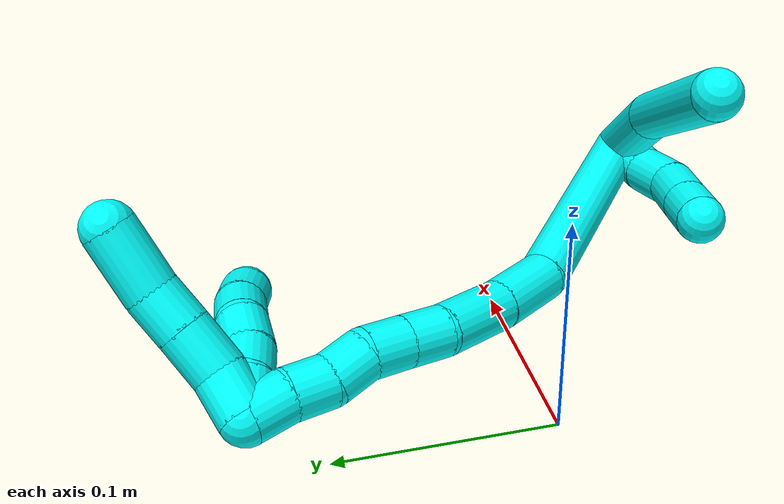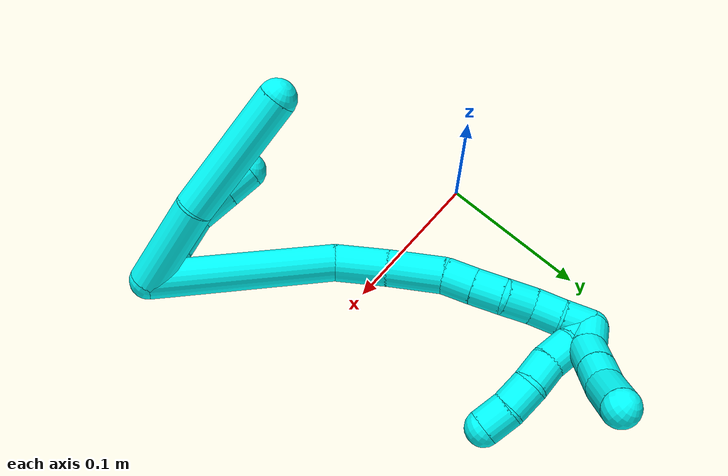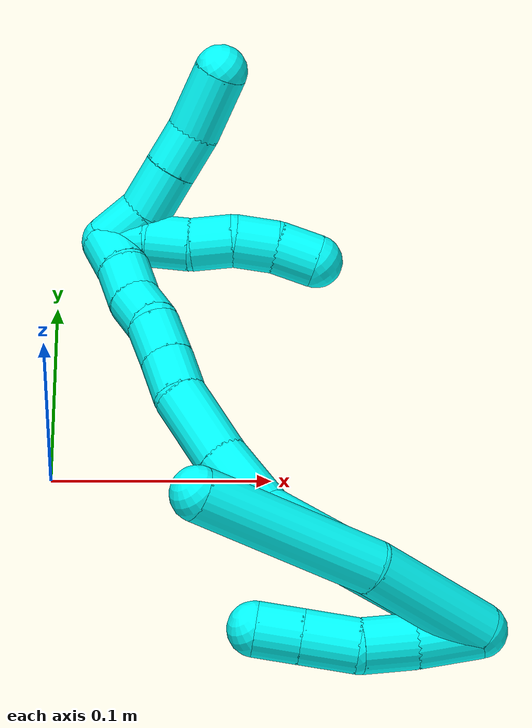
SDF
<sdf version="1.7">
 <world name="default">
  <model name="3">
   <static>0</static>
   <link name="3">
    <collision name="collision-cylinder-e_1_2_8">
     <pose>0.008857 0.00161 -0.030039 -3.08805 0.286328 -2.77422</pose>
     <geometry><cylinder><radius>0.0125</radius><length>0.062717</length></cylinder></geometry>
     <surface>
      <friction><ode><mu>1.16</mu><mu2>1.16</mu2><slip1>0</slip1><slip2>0</slip2></ode></friction>
      <contact><ode><kp>1e+06</kp><kd>1</kd><max_vel>0</max_vel><min_depth>0.001</min_depth></ode></contact>
     </surface>
    </collision>
    <visual name="visual-cylinder-e_1_2_8">
     <pose>0.008857 0.00161 -0.030039 -3.08805 0.286328 -2.77422</pose>
     <geometry><cylinder><radius>0.0125</radius><length>0.062717</length></cylinder></geometry>
     <material><ambient>0.003922 1 0.996078 1</ambient></material>
    </visual>
    <collision name="collision-cylinder-e_2_8_6">
     <pose>0.035625 0.010147 -0.099267 -2.96665 0.422915 -2.36593</pose>
     <geometry><cylinder><radius>0.0125</radius><length>0.087283</length></cylinder></geometry>
     <surface>
      <friction><ode><mu>1.16</mu><mu2>1.16</mu2><slip1>0</slip1><slip2>0</slip2></ode></friction>
      <contact><ode><kp>1e+06</kp><kd>1</kd><max_vel>0</max_vel><min_depth>0.001</min_depth></ode></contact>
     </surface>
    </collision>
    <visual name="visual-cylinder-e_2_8_6">
     <pose>0.035625 0.010147 -0.099267 -2.96665 0.422915 -2.36593</pose>
     <geometry><cylinder><radius>0.0125</radius><length>0.087283</length></cylinder></geometry>
     <material><ambient>0.003922 1 0.996078 1</ambient></material>
    </visual>
    <collision name="collision-cylinder-e_1_2_9">
     <pose>0.012149 0.00388 -0.00657 -2.60817 1.01001 -2.22355</pose>
     <geometry><cylinder><radius>0.0125</radius><length>0.028692</length></cylinder></geometry>
     <surface>
      <friction><ode><mu>1.16</mu><mu2>1.16</mu2><slip1>0</slip1><slip2>0</slip2></ode></friction>
      <contact><ode><kp>1e+06</kp><kd>1</kd><max_vel>0</max_vel><min_depth>0.001</min_depth></ode></contact>
     </surface>
    </collision>
    <visual name="visual-cylinder-e_1_2_9">
     <pose>0.012149 0.00388 -0.00657 -2.60817 1.01001 -2.22355</pose>
     <geometry><cylinder><radius>0.0125</radius><length>0.028692</length></cylinder></geometry>
     <material><ambient>0.003922 1 0.996078 1</ambient></material>
    </visual>
    <collision name="collision-cylinder-e_2_9_10">
     <pose>0.034136 0.009827 -0.020506 -2.86789 0.909889 -2.59275</pose>
     <geometry><cylinder><radius>0.0125</radius><length>0.024927</length></cylinder></geometry>
     <surface>
      <friction><ode><mu>1.16</mu><mu2>1.16</mu2><slip1>0</slip1><slip2>0</slip2></ode></friction>
      <contact><ode><kp>1e+06</kp><kd>1</kd><max_vel>0</max_vel><min_depth>0.001</min_depth></ode></contact>
     </surface>
    </collision>
    <visual name="visual-cylinder-e_2_9_10">
     <pose>0.034136 0.009827 -0.020506 -2.86789 0.909889 -2.59275</pose>
     <geometry><cylinder><radius>0.0125</radius><length>0.024927</length></cylinder></geometry>
     <material><ambient>0.003922 1 0.996078 1</ambient></material>
    </visual>
    <collision name="collision-cylinder-e_3_10_11">
     <pose>0.052026 0.017535 -0.036064 -2.53867 0.680489 -1.70017</pose>
     <geometry><cylinder><radius>0.0125</radius><length>0.025592</length></cylinder></geometry>
     <surface>
      <friction><ode><mu>1.16</mu><mu2>1.16</mu2><slip1>0</slip1><slip2>0</slip2></ode></friction>
      <contact><ode><kp>1e+06</kp><kd>1</kd><max_vel>0</max_vel><min_depth>0.001</min_depth></ode></contact>
     </surface>
    </collision>
    <visual name="visual-cylinder-e_3_10_11">
     <pose>0.052026 0.017535 -0.036064 -2.53867 0.680489 -1.70017</pose>
     <geometry><cylinder><radius>0.0125</radius><length>0.025592</length></cylinder></geometry>
     <material><ambient>0.003922 1 0.996078 1</ambient></material>
    </visual>
    <collision name="collision-cylinder-e_4_11_5">
     <pose>0.066622 0.02766 -0.050971 -2.55271 0.681038 -1.7258</pose>
     <geometry><cylinder><radius>0.0125</radius><length>0.020789</length></cylinder></geometry>
     <surface>
      <friction><ode><mu>1.16</mu><mu2>1.16</mu2><slip1>0</slip1><slip2>0</slip2></ode></friction>
      <contact><ode><kp>1e+06</kp><kd>1</kd><max_vel>0</max_vel><min_depth>0.001</min_depth></ode></contact>
     </surface>
    </collision>
    <visual name="visual-cylinder-e_4_11_5">
     <pose>0.066622 0.02766 -0.050971 -2.55271 0.681038 -1.7258</pose>
     <geometry><cylinder><radius>0.0125</radius><length>0.020789</length></cylinder></geometry>
     <material><ambient>0.003922 1 0.996078 1</ambient></material>
    </visual>
    <collision name="collision-cylinder-e_1_2_12">
     <pose>0.016936 0.053519 -0.02536 -2.0133 0.278532 -0.436026</pose>
     <geometry><cylinder><radius>0.0125</radius><length>0.123195</length></cylinder></geometry>
     <surface>
      <friction><ode><mu>1.16</mu><mu2>1.16</mu2><slip1>0</slip1><slip2>0</slip2></ode></friction>
      <contact><ode><kp>1e+06</kp><kd>1</kd><max_vel>0</max_vel><min_depth>0.001</min_depth></ode></contact>
     </surface>
    </collision>
    <visual name="visual-cylinder-e_1_2_12">
     <pose>0.016936 0.053519 -0.02536 -2.0133 0.278532 -0.436026</pose>
     <geometry><cylinder><radius>0.0125</radius><length>0.123195</length></cylinder></geometry>
     <material><ambient>0.003922 1 0.996078 1</ambient></material>
    </visual>
    <collision name="collision-cylinder-e_2_12_13">
     <pose>0.033085 0.12285 -0.059397 -2.07274 -0.04359 0.073625</pose>
     <geometry><cylinder><radius>0.0125</radius><length>0.036107</length></cylinder></geometry>
     <surface>
      <friction><ode><mu>1.16</mu><mu2>1.16</mu2><slip1>0</slip1><slip2>0</slip2></ode></friction>
      <contact><ode><kp>1e+06</kp><kd>1</kd><max_vel>0</max_vel><min_depth>0.001</min_depth></ode></contact>
     </surface>
    </collision>
    <visual name="visual-cylinder-e_2_12_13">
     <pose>0.033085 0.12285 -0.059397 -2.07274 -0.04359 0.073625</pose>
     <geometry><cylinder><radius>0.0125</radius><length>0.036107</length></cylinder></geometry>
     <material><ambient>0.003922 1 0.996078 1</ambient></material>
    </visual>
    <collision name="collision-cylinder-e_3_13_14">
     <pose>0.029683 0.154926 -0.078152 -2.1255 -0.135851 0.243156</pose>
     <geometry><cylinder><radius>0.0125</radius><length>0.038622</length></cylinder></geometry>
     <surface>
      <friction><ode><mu>1.16</mu><mu2>1.16</mu2><slip1>0</slip1><slip2>0</slip2></ode></friction>
      <contact><ode><kp>1e+06</kp><kd>1</kd><max_vel>0</max_vel><min_depth>0.001</min_depth></ode></contact>
     </surface>
    </collision>
    <visual name="visual-cylinder-e_3_13_14">
     <pose>0.029683 0.154926 -0.078152 -2.1255 -0.135851 0.243156</pose>
     <geometry><cylinder><radius>0.0125</radius><length>0.038622</length></cylinder></geometry>
     <material><ambient>0.003922 1 0.996078 1</ambient></material>
    </visual>
    <collision name="collision-cylinder-e_4_14_15">
     <pose>0.023648 0.180029 -0.092401 -2.01171 -0.336555 0.523727</pose>
     <geometry><cylinder><radius>0.0125</radius><length>0.020708</length></cylinder></geometry>
     <surface>
      <friction><ode><mu>1.16</mu><mu2>1.16</mu2><slip1>0</slip1><slip2>0</slip2></ode></friction>
      <contact><ode><kp>1e+06</kp><kd>1</kd><max_vel>0</max_vel><min_depth>0.001</min_depth></ode></contact>
     </surface>
    </collision>
    <visual name="visual-cylinder-e_4_14_15">
     <pose>0.023648 0.180029 -0.092401 -2.01171 -0.336555 0.523727</pose>
     <geometry><cylinder><radius>0.0125</radius><length>0.020708</length></cylinder></geometry>
     <material><ambient>0.003922 1 0.996078 1</ambient></material>
    </visual>
    <collision name="collision-cylinder-e_5_15_16">
     <pose>0.017026 0.197727 -0.100994 -2.03377 -0.312799 0.499269</pose>
     <geometry><cylinder><radius>0.0125</radius><length>0.020814</length></cylinder></geometry>
     <surface>
      <friction><ode><mu>1.16</mu><mu2>1.16</mu2><slip1>0</slip1><slip2>0</slip2></ode></friction>
      <contact><ode><kp>1e+06</kp><kd>1</kd><max_vel>0</max_vel><min_depth>0.001</min_depth></ode></contact>
     </surface>
    </collision>
    <visual name="visual-cylinder-e_5_15_16">
     <pose>0.017026 0.197727 -0.100994 -2.03377 -0.312799 0.499269</pose>
     <geometry><cylinder><radius>0.0125</radius><length>0.020814</length></cylinder></geometry>
     <material><ambient>0.003922 1 0.996078 1</ambient></material>
    </visual>
    <collision name="collision-cylinder-e_6_16_17">
     <pose>0.013139 0.216448 -0.107602 -1.78894 -0.067705 0.084339</pose>
     <geometry><cylinder><radius>0.0125</radius><length>0.020248</length></cylinder></geometry>
     <surface>
      <friction><ode><mu>1.16</mu><mu2>1.16</mu2><slip1>0</slip1><slip2>0</slip2></ode></friction>
      <contact><ode><kp>1e+06</kp><kd>1</kd><max_vel>0</max_vel><min_depth>0.001</min_depth></ode></contact>
     </surface>
    </collision>
    <visual name="visual-cylinder-e_6_16_17">
     <pose>0.013139 0.216448 -0.107602 -1.78894 -0.067705 0.084339</pose>
     <geometry><cylinder><radius>0.0125</radius><length>0.020248</length></cylinder></geometry>
     <material><ambient>0.003922 1 0.996078 1</ambient></material>
    </visual>
    <collision name="collision-cylinder-e_7_17_18">
     <pose>0.0093 0.235158 -0.113263 -1.94499 -0.320417 0.465532</pose>
     <geometry><cylinder><radius>0.0125</radius><length>0.020032</length></cylinder></geometry>
     <surface>
      <friction><ode><mu>1.16</mu><mu2>1.16</mu2><slip1>0</slip1><slip2>0</slip2></ode></friction>
      <contact><ode><kp>1e+06</kp><kd>1</kd><max_vel>0</max_vel><min_depth>0.001</min_depth></ode></contact>
     </surface>
    </collision>
    <visual name="visual-cylinder-e_7_17_18">
     <pose>0.0093 0.235158 -0.113263 -1.94499 -0.320417 0.465532</pose>
     <geometry><cylinder><radius>0.0125</radius><length>0.020032</length></cylinder></geometry>
     <material><ambient>0.003922 1 0.996078 1</ambient></material>
    </visual>
    <collision name="collision-cylinder-e_8_18_1">
     <pose>0.004321 0.25358 -0.119524 -1.85398 -0.180872 0.240501</pose>
     <geometry><cylinder><radius>0.0125</radius><length>0.020274</length></cylinder></geometry>
     <surface>
      <friction><ode><mu>1.16</mu><mu2>1.16</mu2><slip1>0</slip1><slip2>0</slip2></ode></friction>
      <contact><ode><kp>1e+06</kp><kd>1</kd><max_vel>0</max_vel><min_depth>0.001</min_depth></ode></contact>
     </surface>
    </collision>
    <visual name="visual-cylinder-e_8_18_1">
     <pose>0.004321 0.25358 -0.119524 -1.85398 -0.180872 0.240501</pose>
     <geometry><cylinder><radius>0.0125</radius><length>0.020274</length></cylinder></geometry>
     <material><ambient>0.003922 1 0.996078 1</ambient></material>
    </visual>
    <collision name="collision-cylinder-e_1_1_19">
     <pose>-0.004738 0.257346 -0.11858 0.999986 -0.808949 -0.459455</pose>
     <geometry><cylinder><radius>0.0125</radius><length>0.02</length></cylinder></geometry>
     <surface>
      <friction><ode><mu>1.16</mu><mu2>1.16</mu2><slip1>0</slip1><slip2>0</slip2></ode></friction>
      <contact><ode><kp>1e+06</kp><kd>1</kd><max_vel>0</max_vel><min_depth>0.001</min_depth></ode></contact>
     </surface>
    </collision>
    <visual name="visual-cylinder-e_1_1_19">
     <pose>-0.004738 0.257346 -0.11858 0.999986 -0.808949 -0.459455</pose>
     <geometry><cylinder><radius>0.0125</radius><length>0.02</length></cylinder></geometry>
     <material><ambient>0.003922 1 0.996078 1</ambient></material>
    </visual>
    <collision name="collision-cylinder-e_2_19_20">
     <pose>-0.018583 0.246249 -0.109528 0.782218 -0.722141 -0.308948</pose>
     <geometry><cylinder><radius>0.0125</radius><length>0.02</length></cylinder></geometry>
     <surface>
      <friction><ode><mu>1.16</mu><mu2>1.16</mu2><slip1>0</slip1><slip2>0</slip2></ode></friction>
      <contact><ode><kp>1e+06</kp><kd>1</kd><max_vel>0</max_vel><min_depth>0.001</min_depth></ode></contact>
     </surface>
    </collision>
    <visual name="visual-cylinder-e_2_19_20">
     <pose>-0.018583 0.246249 -0.109528 0.782218 -0.722141 -0.308948</pose>
     <geometry><cylinder><radius>0.0125</radius><length>0.02</length></cylinder></geometry>
     <material><ambient>0.003922 1 0.996078 1</ambient></material>
    </visual>
    <collision name="collision-cylinder-e_3_20_21">
     <pose>-0.033213 0.237038 -0.0997 0.716387 -0.930668 -0.371586</pose>
     <geometry><cylinder><radius>0.0125</radius><length>0.02</length></cylinder></geometry>
     <surface>
      <friction><ode><mu>1.16</mu><mu2>1.16</mu2><slip1>0</slip1><slip2>0</slip2></ode></friction>
      <contact><ode><kp>1e+06</kp><kd>1</kd><max_vel>0</max_vel><min_depth>0.001</min_depth></ode></contact>
     </surface>
    </collision>
    <visual name="visual-cylinder-e_3_20_21">
     <pose>-0.033213 0.237038 -0.0997 0.716387 -0.930668 -0.371586</pose>
     <geometry><cylinder><radius>0.0125</radius><length>0.02</length></cylinder></geometry>
     <material><ambient>0.003922 1 0.996078 1</ambient></material>
    </visual>
    <collision name="collision-cylinder-e_4_21_22">
     <pose>-0.047647 0.229602 -0.088375 0.475714 -0.696237 -0.175515</pose>
     <geometry><cylinder><radius>0.0125</radius><length>0.02</length></cylinder></geometry>
     <surface>
      <friction><ode><mu>1.16</mu><mu2>1.16</mu2><slip1>0</slip1><slip2>0</slip2></ode></friction>
      <contact><ode><kp>1e+06</kp><kd>1</kd><max_vel>0</max_vel><min_depth>0.001</min_depth></ode></contact>
     </surface>
    </collision>
    <visual name="visual-cylinder-e_4_21_22">
     <pose>-0.047647 0.229602 -0.088375 0.475714 -0.696237 -0.175515</pose>
     <geometry><cylinder><radius>0.0125</radius><length>0.02</length></cylinder></geometry>
     <material><ambient>0.003922 1 0.996078 1</ambient></material>
    </visual>
    <collision name="collision-cylinder-e_5_22_4">
     <pose>-0.058923 0.221749 -0.073969 0.51954 -0.507815 -0.137724</pose>
     <geometry><cylinder><radius>0.0125</radius><length>0.02</length></cylinder></geometry>
     <surface>
      <friction><ode><mu>1.16</mu><mu2>1.16</mu2><slip1>0</slip1><slip2>0</slip2></ode></friction>
      <contact><ode><kp>1e+06</kp><kd>1</kd><max_vel>0</max_vel><min_depth>0.001</min_depth></ode></contact>
     </surface>
    </collision>
    <visual name="visual-cylinder-e_5_22_4">
     <pose>-0.058923 0.221749 -0.073969 0.51954 -0.507815 -0.137724</pose>
     <geometry><cylinder><radius>0.0125</radius><length>0.02</length></cylinder></geometry>
     <material><ambient>0.003922 1 0.996078 1</ambient></material>
    </visual>
    <collision name="collision-cylinder-e_1_1_23">
     <pose>-0.00837 0.26056 -0.123255 1.91994 -1.32194 -1.67561</pose>
     <geometry><cylinder><radius>0.0125</radius><length>0.022428</length></cylinder></geometry>
     <surface>
      <friction><ode><mu>1.16</mu><mu2>1.16</mu2><slip1>0</slip1><slip2>0</slip2></ode></friction>
      <contact><ode><kp>1e+06</kp><kd>1</kd><max_vel>0</max_vel><min_depth>0.001</min_depth></ode></contact>
     </surface>
    </collision>
    <visual name="visual-cylinder-e_1_1_23">
     <pose>-0.00837 0.26056 -0.123255 1.91994 -1.32194 -1.67561</pose>
     <geometry><cylinder><radius>0.0125</radius><length>0.022428</length></cylinder></geometry>
     <material><ambient>0.003922 1 0.996078 1</ambient></material>
    </visual>
    <collision name="collision-cylinder-e_2_23_24">
     <pose>-0.030372 0.257096 -0.128755 2.95315 -1.1761 -2.85999</pose>
     <geometry><cylinder><radius>0.0125</radius><length>0.02412</length></cylinder></geometry>
     <surface>
      <friction><ode><mu>1.16</mu><mu2>1.16</mu2><slip1>0</slip1><slip2>0</slip2></ode></friction>
      <contact><ode><kp>1e+06</kp><kd>1</kd><max_vel>0</max_vel><min_depth>0.001</min_depth></ode></contact>
     </surface>
    </collision>
    <visual name="visual-cylinder-e_2_23_24">
     <pose>-0.030372 0.257096 -0.128755 2.95315 -1.1761 -2.85999</pose>
     <geometry><cylinder><radius>0.0125</radius><length>0.02412</length></cylinder></geometry>
     <material><ambient>0.003922 1 0.996078 1</ambient></material>
    </visual>
    <collision name="collision-cylinder-e_3_24_25">
     <pose>-0.051246 0.25567 -0.137121 2.99641 -1.19431 -2.92851</pose>
     <geometry><cylinder><radius>0.0125</radius><length>0.02095</length></cylinder></geometry>
     <surface>
      <friction><ode><mu>1.16</mu><mu2>1.16</mu2><slip1>0</slip1><slip2>0</slip2></ode></friction>
      <contact><ode><kp>1e+06</kp><kd>1</kd><max_vel>0</max_vel><min_depth>0.001</min_depth></ode></contact>
     </surface>
    </collision>
    <visual name="visual-cylinder-e_3_24_25">
     <pose>-0.051246 0.25567 -0.137121 2.99641 -1.19431 -2.92851</pose>
     <geometry><cylinder><radius>0.0125</radius><length>0.02095</length></cylinder></geometry>
     <material><ambient>0.003922 1 0.996078 1</ambient></material>
    </visual>
    <collision name="collision-cylinder-e_4_25_3">
     <pose>-0.074614 0.252596 -0.149422 2.85339 -0.994512 -2.61911</pose>
     <geometry><cylinder><radius>0.0125</radius><length>0.032502</length></cylinder></geometry>
     <surface>
      <friction><ode><mu>1.16</mu><mu2>1.16</mu2><slip1>0</slip1><slip2>0</slip2></ode></friction>
      <contact><ode><kp>1e+06</kp><kd>1</kd><max_vel>0</max_vel><min_depth>0.001</min_depth></ode></contact>
     </surface>
    </collision>
    <visual name="visual-cylinder-e_4_25_3">
     <pose>-0.074614 0.252596 -0.149422 2.85339 -0.994512 -2.61911</pose>
     <geometry><cylinder><radius>0.0125</radius><length>0.032502</length></cylinder></geometry>
     <material><ambient>0.003922 1 0.996078 1</ambient></material>
    </visual>
    <collision name="collision-sphere-3">
     <pose>-0.08824 0.250079 -0.157912 0 -0 0</pose>
     <geometry><sphere><radius>0.0125</radius></sphere></geometry>
     <surface>
      <friction><ode><mu>1.16</mu><mu2>1.16</mu2><slip1>0</slip1><slip2>0</slip2></ode></friction>
      <contact><ode><kp>1e+06</kp><kd>1</kd><max_vel>0</max_vel><min_depth>0.001</min_depth></ode></contact>
     </surface>
    </collision>
    <visual name="visual-sphere-3">
     <pose>-0.08824 0.250079 -0.157912 0 -0 0</pose>
     <geometry><sphere><radius>0.0125</radius></sphere></geometry>
     <material><ambient>0.003922 1 0.996078 1</ambient></material>
    </visual>
    <collision name="collision-sphere-25">
     <pose>-0.060987 0.255112 -0.140932 0 -0 0</pose>
     <geometry><sphere><radius>0.0125</radius></sphere></geometry>
     <surface>
      <friction><ode><mu>1.16</mu><mu2>1.16</mu2><slip1>0</slip1><slip2>0</slip2></ode></friction>
      <contact><ode><kp>1e+06</kp><kd>1</kd><max_vel>0</max_vel><min_depth>0.001</min_depth></ode></contact>
     </surface>
    </collision>
    <visual name="visual-sphere-25">
     <pose>-0.060987 0.255112 -0.140932 0 -0 0</pose>
     <geometry><sphere><radius>0.0125</radius></sphere></geometry>
     <material><ambient>0.003922 1 0.996078 1</ambient></material>
    </visual>
    <collision name="collision-sphere-24">
     <pose>-0.041504 0.256227 -0.13331 0 -0 0</pose>
     <geometry><sphere><radius>0.0125</radius></sphere></geometry>
     <surface>
      <friction><ode><mu>1.16</mu><mu2>1.16</mu2><slip1>0</slip1><slip2>0</slip2></ode></friction>
      <contact><ode><kp>1e+06</kp><kd>1</kd><max_vel>0</max_vel><min_depth>0.001</min_depth></ode></contact>
     </surface>
    </collision>
    <visual name="visual-sphere-24">
     <pose>-0.041504 0.256227 -0.13331 0 -0 0</pose>
     <geometry><sphere><radius>0.0125</radius></sphere></geometry>
     <material><ambient>0.003922 1 0.996078 1</ambient></material>
    </visual>
    <collision name="collision-sphere-23">
     <pose>-0.019239 0.257964 -0.1242 0 -0 0</pose>
     <geometry><sphere><radius>0.0125</radius></sphere></geometry>
     <surface>
      <friction><ode><mu>1.16</mu><mu2>1.16</mu2><slip1>0</slip1><slip2>0</slip2></ode></friction>
      <contact><ode><kp>1e+06</kp><kd>1</kd><max_vel>0</max_vel><min_depth>0.001</min_depth></ode></contact>
     </surface>
    </collision>
    <visual name="visual-sphere-23">
     <pose>-0.019239 0.257964 -0.1242 0 -0 0</pose>
     <geometry><sphere><radius>0.0125</radius></sphere></geometry>
     <material><ambient>0.003922 1 0.996078 1</ambient></material>
    </visual>
    <collision name="collision-sphere-4">
     <pose>-0.063786 0.217411 -0.066384 0 -0 0</pose>
     <geometry><sphere><radius>0.0125</radius></sphere></geometry>
     <surface>
      <friction><ode><mu>1.16</mu><mu2>1.16</mu2><slip1>0</slip1><slip2>0</slip2></ode></friction>
      <contact><ode><kp>1e+06</kp><kd>1</kd><max_vel>0</max_vel><min_depth>0.001</min_depth></ode></contact>
     </surface>
    </collision>
    <visual name="visual-sphere-4">
     <pose>-0.063786 0.217411 -0.066384 0 -0 0</pose>
     <geometry><sphere><radius>0.0125</radius></sphere></geometry>
     <material><ambient>0.003922 1 0.996078 1</ambient></material>
    </visual>
    <collision name="collision-sphere-22">
     <pose>-0.05406 0.226088 -0.081554 0 -0 0</pose>
     <geometry><sphere><radius>0.0125</radius></sphere></geometry>
     <surface>
      <friction><ode><mu>1.16</mu><mu2>1.16</mu2><slip1>0</slip1><slip2>0</slip2></ode></friction>
      <contact><ode><kp>1e+06</kp><kd>1</kd><max_vel>0</max_vel><min_depth>0.001</min_depth></ode></contact>
     </surface>
    </collision>
    <visual name="visual-sphere-22">
     <pose>-0.05406 0.226088 -0.081554 0 -0 0</pose>
     <geometry><sphere><radius>0.0125</radius></sphere></geometry>
     <material><ambient>0.003922 1 0.996078 1</ambient></material>
    </visual>
    <collision name="collision-sphere-21">
     <pose>-0.041233 0.233115 -0.095195 0 -0 0</pose>
     <geometry><sphere><radius>0.0125</radius></sphere></geometry>
     <surface>
      <friction><ode><mu>1.16</mu><mu2>1.16</mu2><slip1>0</slip1><slip2>0</slip2></ode></friction>
      <contact><ode><kp>1e+06</kp><kd>1</kd><max_vel>0</max_vel><min_depth>0.001</min_depth></ode></contact>
     </surface>
    </collision>
    <visual name="visual-sphere-21">
     <pose>-0.041233 0.233115 -0.095195 0 -0 0</pose>
     <geometry><sphere><radius>0.0125</radius></sphere></geometry>
     <material><ambient>0.003922 1 0.996078 1</ambient></material>
    </visual>
    <collision name="collision-sphere-20">
     <pose>-0.025193 0.24096 -0.104205 0 -0 0</pose>
     <geometry><sphere><radius>0.0125</radius></sphere></geometry>
     <surface>
      <friction><ode><mu>1.16</mu><mu2>1.16</mu2><slip1>0</slip1><slip2>0</slip2></ode></friction>
      <contact><ode><kp>1e+06</kp><kd>1</kd><max_vel>0</max_vel><min_depth>0.001</min_depth></ode></contact>
     </surface>
    </collision>
    <visual name="visual-sphere-20">
     <pose>-0.025193 0.24096 -0.104205 0 -0 0</pose>
     <geometry><sphere><radius>0.0125</radius></sphere></geometry>
     <material><ambient>0.003922 1 0.996078 1</ambient></material>
    </visual>
    <collision name="collision-sphere-11">
     <pose>0.060077 0.023175 -0.044256 0 -0 0</pose>
     <geometry><sphere><radius>0.0125</radius></sphere></geometry>
     <surface>
      <friction><ode><mu>1.16</mu><mu2>1.16</mu2><slip1>0</slip1><slip2>0</slip2></ode></friction>
      <contact><ode><kp>1e+06</kp><kd>1</kd><max_vel>0</max_vel><min_depth>0.001</min_depth></ode></contact>
     </surface>
    </collision>
    <visual name="visual-sphere-11">
     <pose>0.060077 0.023175 -0.044256 0 -0 0</pose>
     <geometry><sphere><radius>0.0125</radius></sphere></geometry>
     <material><ambient>0.003922 1 0.996078 1</ambient></material>
    </visual>
    <collision name="collision-sphere-10">
     <pose>0.043975 0.011895 -0.027871 0 -0 0</pose>
     <geometry><sphere><radius>0.0125</radius></sphere></geometry>
     <surface>
      <friction><ode><mu>1.16</mu><mu2>1.16</mu2><slip1>0</slip1><slip2>0</slip2></ode></friction>
      <contact><ode><kp>1e+06</kp><kd>1</kd><max_vel>0</max_vel><min_depth>0.001</min_depth></ode></contact>
     </surface>
    </collision>
    <visual name="visual-sphere-10">
     <pose>0.043975 0.011895 -0.027871 0 -0 0</pose>
     <geometry><sphere><radius>0.0125</radius></sphere></geometry>
     <material><ambient>0.003922 1 0.996078 1</ambient></material>
    </visual>
    <collision name="collision-sphere-6">
     <pose>0.053536 0.017074 -0.138456 0 -0 0</pose>
     <geometry><sphere><radius>0.0125</radius></sphere></geometry>
     <surface>
      <friction><ode><mu>1.16</mu><mu2>1.16</mu2><slip1>0</slip1><slip2>0</slip2></ode></friction>
      <contact><ode><kp>1e+06</kp><kd>1</kd><max_vel>0</max_vel><min_depth>0.001</min_depth></ode></contact>
     </surface>
    </collision>
    <visual name="visual-sphere-6">
     <pose>0.053536 0.017074 -0.138456 0 -0 0</pose>
     <geometry><sphere><radius>0.0125</radius></sphere></geometry>
     <material><ambient>0.003922 1 0.996078 1</ambient></material>
    </visual>
    <collision name="collision-sphere-9">
     <pose>0.024297 0.007759 -0.01314 0 -0 0</pose>
     <geometry><sphere><radius>0.0125</radius></sphere></geometry>
     <surface>
      <friction><ode><mu>1.16</mu><mu2>1.16</mu2><slip1>0</slip1><slip2>0</slip2></ode></friction>
      <contact><ode><kp>1e+06</kp><kd>1</kd><max_vel>0</max_vel><min_depth>0.001</min_depth></ode></contact>
     </surface>
    </collision>
    <visual name="visual-sphere-9">
     <pose>0.024297 0.007759 -0.01314 0 -0 0</pose>
     <geometry><sphere><radius>0.0125</radius></sphere></geometry>
     <material><ambient>0.003922 1 0.996078 1</ambient></material>
    </visual>
    <collision name="collision-sphere-2">
     <geometry><sphere><radius>0.0125</radius></sphere></geometry>
     <surface>
      <friction><ode><mu>1.16</mu><mu2>1.16</mu2><slip1>0</slip1><slip2>0</slip2></ode></friction>
      <contact><ode><kp>1e+06</kp><kd>1</kd><max_vel>0</max_vel><min_depth>0.001</min_depth></ode></contact>
     </surface>
    </collision>
    <visual name="visual-sphere-2">
     <geometry><sphere><radius>0.0125</radius></sphere></geometry>
     <material><ambient>0.003922 1 0.996078 1</ambient></material>
    </visual>
    <collision name="collision-sphere-19">
     <pose>-0.011973 0.251538 -0.114851 0 -0 0</pose>
     <geometry><sphere><radius>0.0125</radius></sphere></geometry>
     <surface>
      <friction><ode><mu>1.16</mu><mu2>1.16</mu2><slip1>0</slip1><slip2>0</slip2></ode></friction>
      <contact><ode><kp>1e+06</kp><kd>1</kd><max_vel>0</max_vel><min_depth>0.001</min_depth></ode></contact>
     </surface>
    </collision>
    <visual name="visual-sphere-19">
     <pose>-0.011973 0.251538 -0.114851 0 -0 0</pose>
     <geometry><sphere><radius>0.0125</radius></sphere></geometry>
     <material><ambient>0.003922 1 0.996078 1</ambient></material>
    </visual>
    <collision name="collision-sphere-8">
     <pose>0.017713 0.00322 -0.060077 0 -0 0</pose>
     <geometry><sphere><radius>0.0125</radius></sphere></geometry>
     <surface>
      <friction><ode><mu>1.16</mu><mu2>1.16</mu2><slip1>0</slip1><slip2>0</slip2></ode></friction>
      <contact><ode><kp>1e+06</kp><kd>1</kd><max_vel>0</max_vel><min_depth>0.001</min_depth></ode></contact>
     </surface>
    </collision>
    <visual name="visual-sphere-8">
     <pose>0.017713 0.00322 -0.060077 0 -0 0</pose>
     <geometry><sphere><radius>0.0125</radius></sphere></geometry>
     <material><ambient>0.003922 1 0.996078 1</ambient></material>
    </visual>
    <collision name="collision-sphere-5">
     <pose>0.073166 0.032146 -0.057687 0 -0 0</pose>
     <geometry><sphere><radius>0.0125</radius></sphere></geometry>
     <surface>
      <friction><ode><mu>1.16</mu><mu2>1.16</mu2><slip1>0</slip1><slip2>0</slip2></ode></friction>
      <contact><ode><kp>1e+06</kp><kd>1</kd><max_vel>0</max_vel><min_depth>0.001</min_depth></ode></contact>
     </surface>
    </collision>
    <visual name="visual-sphere-5">
     <pose>0.073166 0.032146 -0.057687 0 -0 0</pose>
     <geometry><sphere><radius>0.0125</radius></sphere></geometry>
     <material><ambient>0.003922 1 0.996078 1</ambient></material>
    </visual>
    <collision name="collision-sphere-12">
     <pose>0.033872 0.107038 -0.05072 0 -0 0</pose>
     <geometry><sphere><radius>0.0125</radius></sphere></geometry>
     <surface>
      <friction><ode><mu>1.16</mu><mu2>1.16</mu2><slip1>0</slip1><slip2>0</slip2></ode></friction>
      <contact><ode><kp>1e+06</kp><kd>1</kd><max_vel>0</max_vel><min_depth>0.001</min_depth></ode></contact>
     </surface>
    </collision>
    <visual name="visual-sphere-12">
     <pose>0.033872 0.107038 -0.05072 0 -0 0</pose>
     <geometry><sphere><radius>0.0125</radius></sphere></geometry>
     <material><ambient>0.003922 1 0.996078 1</ambient></material>
    </visual>
    <collision name="collision-sphere-13">
     <pose>0.032298 0.138661 -0.068075 0 -0 0</pose>
     <geometry><sphere><radius>0.0125</radius></sphere></geometry>
     <surface>
      <friction><ode><mu>1.16</mu><mu2>1.16</mu2><slip1>0</slip1><slip2>0</slip2></ode></friction>
      <contact><ode><kp>1e+06</kp><kd>1</kd><max_vel>0</max_vel><min_depth>0.001</min_depth></ode></contact>
     </surface>
    </collision>
    <visual name="visual-sphere-13">
     <pose>0.032298 0.138661 -0.068075 0 -0 0</pose>
     <geometry><sphere><radius>0.0125</radius></sphere></geometry>
     <material><ambient>0.003922 1 0.996078 1</ambient></material>
    </visual>
    <collision name="collision-sphere-14">
     <pose>0.027068 0.17119 -0.08823 0 -0 0</pose>
     <geometry><sphere><radius>0.0125</radius></sphere></geometry>
     <surface>
      <friction><ode><mu>1.16</mu><mu2>1.16</mu2><slip1>0</slip1><slip2>0</slip2></ode></friction>
      <contact><ode><kp>1e+06</kp><kd>1</kd><max_vel>0</max_vel><min_depth>0.001</min_depth></ode></contact>
     </surface>
    </collision>
    <visual name="visual-sphere-14">
     <pose>0.027068 0.17119 -0.08823 0 -0 0</pose>
     <geometry><sphere><radius>0.0125</radius></sphere></geometry>
     <material><ambient>0.003922 1 0.996078 1</ambient></material>
    </visual>
    <collision name="collision-sphere-15">
     <pose>0.020229 0.188867 -0.096572 0 -0 0</pose>
     <geometry><sphere><radius>0.0125</radius></sphere></geometry>
     <surface>
      <friction><ode><mu>1.16</mu><mu2>1.16</mu2><slip1>0</slip1><slip2>0</slip2></ode></friction>
      <contact><ode><kp>1e+06</kp><kd>1</kd><max_vel>0</max_vel><min_depth>0.001</min_depth></ode></contact>
     </surface>
    </collision>
    <visual name="visual-sphere-15">
     <pose>0.020229 0.188867 -0.096572 0 -0 0</pose>
     <geometry><sphere><radius>0.0125</radius></sphere></geometry>
     <material><ambient>0.003922 1 0.996078 1</ambient></material>
    </visual>
    <collision name="collision-sphere-16">
     <pose>0.013824 0.206586 -0.105416 0 -0 0</pose>
     <geometry><sphere><radius>0.0125</radius></sphere></geometry>
     <surface>
      <friction><ode><mu>1.16</mu><mu2>1.16</mu2><slip1>0</slip1><slip2>0</slip2></ode></friction>
      <contact><ode><kp>1e+06</kp><kd>1</kd><max_vel>0</max_vel><min_depth>0.001</min_depth></ode></contact>
     </surface>
    </collision>
    <visual name="visual-sphere-16">
     <pose>0.013824 0.206586 -0.105416 0 -0 0</pose>
     <geometry><sphere><radius>0.0125</radius></sphere></geometry>
     <material><ambient>0.003922 1 0.996078 1</ambient></material>
    </visual>
    <collision name="collision-sphere-17">
     <pose>0.012454 0.22631 -0.109788 0 -0 0</pose>
     <geometry><sphere><radius>0.0125</radius></sphere></geometry>
     <surface>
      <friction><ode><mu>1.16</mu><mu2>1.16</mu2><slip1>0</slip1><slip2>0</slip2></ode></friction>
      <contact><ode><kp>1e+06</kp><kd>1</kd><max_vel>0</max_vel><min_depth>0.001</min_depth></ode></contact>
     </surface>
    </collision>
    <visual name="visual-sphere-17">
     <pose>0.012454 0.22631 -0.109788 0 -0 0</pose>
     <geometry><sphere><radius>0.0125</radius></sphere></geometry>
     <material><ambient>0.003922 1 0.996078 1</ambient></material>
    </visual>
    <collision name="collision-sphere-18">
     <pose>0.006145 0.244006 -0.116738 0 -0 0</pose>
     <geometry><sphere><radius>0.0125</radius></sphere></geometry>
     <surface>
      <friction><ode><mu>1.16</mu><mu2>1.16</mu2><slip1>0</slip1><slip2>0</slip2></ode></friction>
      <contact><ode><kp>1e+06</kp><kd>1</kd><max_vel>0</max_vel><min_depth>0.001</min_depth></ode></contact>
     </surface>
    </collision>
    <visual name="visual-sphere-18">
     <pose>0.006145 0.244006 -0.116738 0 -0 0</pose>
     <geometry><sphere><radius>0.0125</radius></sphere></geometry>
     <material><ambient>0.003922 1 0.996078 1</ambient></material>
    </visual>
    <collision name="collision-sphere-1">
     <pose>0.002498 0.263155 -0.12231 0 -0 0</pose>
     <geometry><sphere><radius>0.0125</radius></sphere></geometry>
     <surface>
      <friction><ode><mu>1.16</mu><mu2>1.16</mu2><slip1>0</slip1><slip2>0</slip2></ode></friction>
      <contact><ode><kp>1e+06</kp><kd>1</kd><max_vel>0</max_vel><min_depth>0.001</min_depth></ode></contact>
     </surface>
    </collision>
    <visual name="visual-sphere-1">
     <pose>0.002498 0.263155 -0.12231 0 -0 0</pose>
     <geometry><sphere><radius>0.0125</radius></sphere></geometry>
     <material><ambient>0.003922 1 0.996078 1</ambient></material>
    </visual>
    <inertial>
     <pose>0.007615 0.121211 -0.074408 0 -0 0</pose>
     <mass>0.75</mass>
     <inertia>
      <ixx>-1.9e-05</ixx>
      <ixy>0</ixy>
      <ixz>0</ixz>
      <iyy>-6e-05</iyy>
      <iyz>0</iyz>
      <izz>-0.000254</izz>
     </inertia>
    </inertial>
   </link>
   <pose>0.191763 -0.104379 0.030408 -2.64274 0.385283 -2.50398</pose>
  </model>
 </world>
</sdf>
